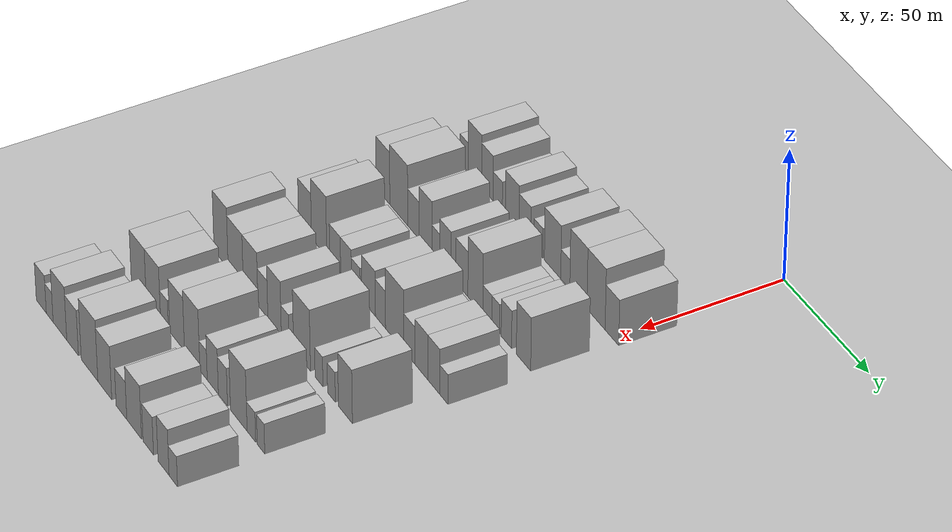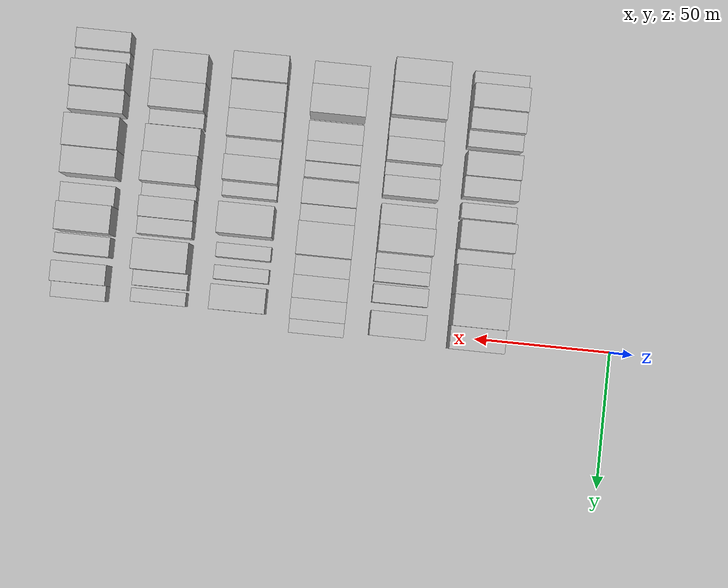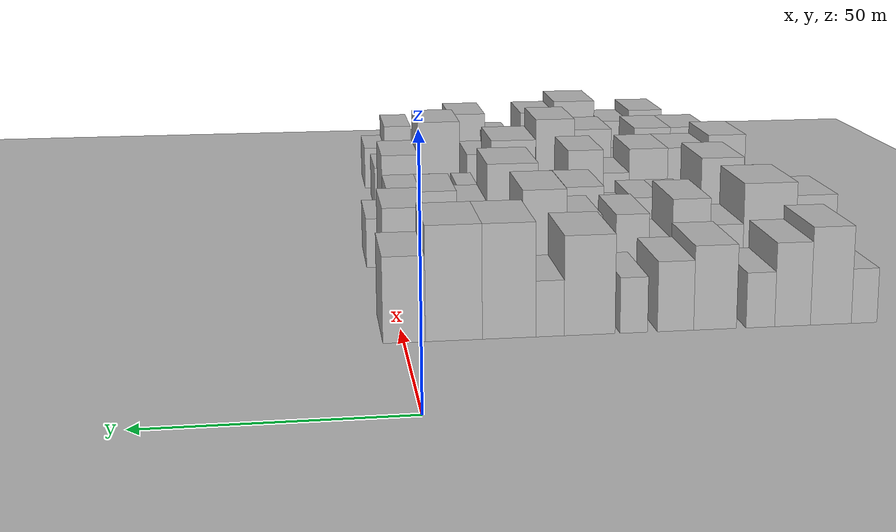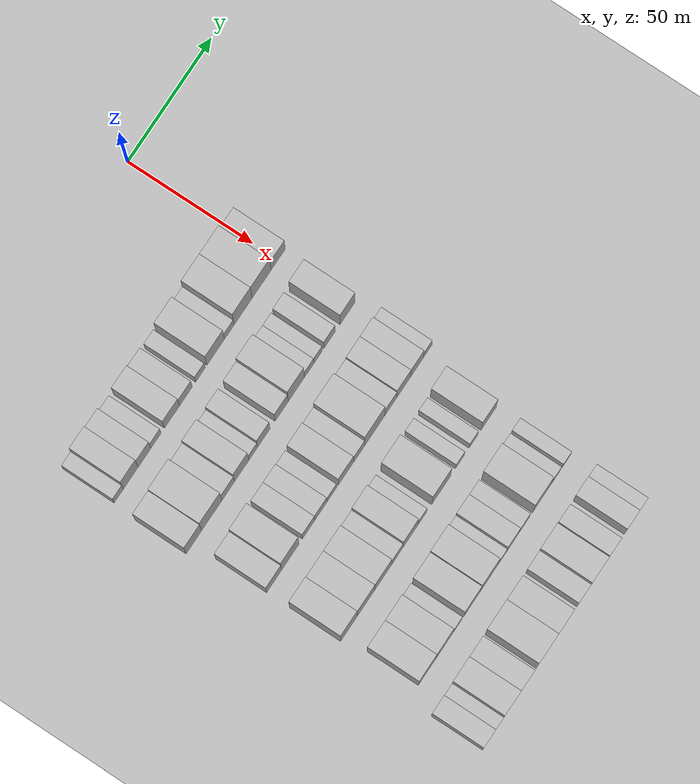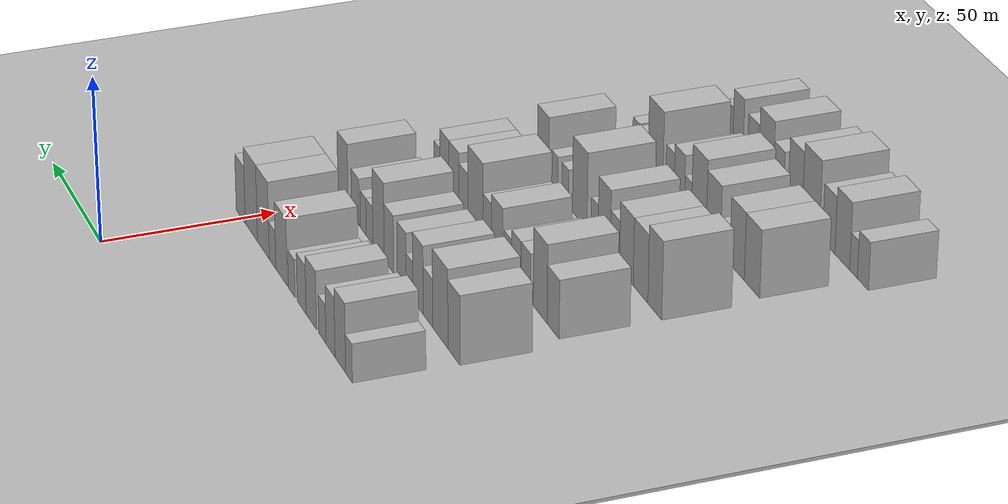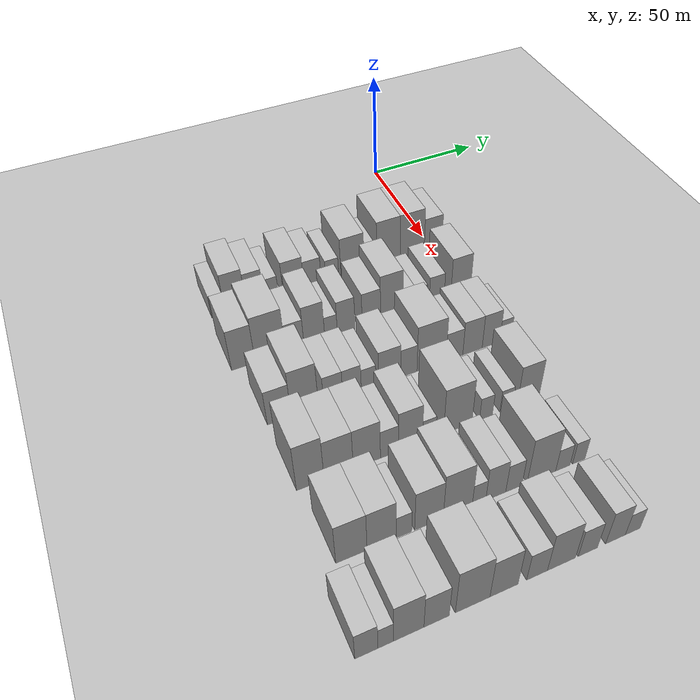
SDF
<sdf version="1.6">
 <world name="default">
  <include><name>ground_plane_1</name><uri>model://HANNAS_ground_plane</uri></include>
  <include>
   <name>ground_plane_2</name>
   <uri>model://HANNAS_ground_plane</uri>
   <pose>100 0 0  0 0 0</pose>
  </include>
  <model name="building_48">
   <static>1</static>
   <pose>50.0000 -94.0663 0 0.000000 0.000000 0.000000</pose>
   <link name="link">
    <pose>0 0 6.00 0 0 0</pose>
    <collision name="collision"><geometry><box><size>20.0000 5.4659 12.0000</size></box></geometry></collision>
    <visual name="visual">
     <cast_shadows>0</cast_shadows>
     <geometry><box><size>20.0000 5.4659 12.0000</size></box></geometry>
     <material>
      <script>
       <uri>model://HANNAS_wall/materials/scripts</uri>
       <uri>model://HANNAS_wall/materials/textures</uri>
       <name>vrc/HANNAS_wall</name>
      </script>
     </material>
    </visual>
   </link>
  </model>
  <model name="building_49">
   <static>1</static>
   <pose>50.0000 -87.0043 0 0.000000 0.000000 0.000000</pose>
   <link name="link">
    <pose>0 0 10.50 0 0 0</pose>
    <collision name="collision"><geometry><box><size>20.0000 8.6581 21.0000</size></box></geometry></collision>
    <visual name="visual">
     <cast_shadows>0</cast_shadows>
     <geometry><box><size>20.0000 8.6581 21.0000</size></box></geometry>
     <material>
      <script>
       <uri>model://HANNAS_wall/materials/scripts</uri>
       <uri>model://HANNAS_wall/materials/textures</uri>
       <name>vrc/HANNAS_wall</name>
      </script>
     </material>
    </visual>
   </link>
  </model>
  <model name="building_50">
   <static>1</static>
   <pose>50.0000 -78.9232 0 0.000000 0.000000 0.000000</pose>
   <link name="link">
    <pose>0 0 9.00 0 0 0</pose>
    <collision name="collision"><geometry><box><size>20.0000 7.5041 18.0000</size></box></geometry></collision>
    <visual name="visual">
     <cast_shadows>0</cast_shadows>
     <geometry><box><size>20.0000 7.5041 18.0000</size></box></geometry>
     <material>
      <script>
       <uri>model://HANNAS_wall/materials/scripts</uri>
       <uri>model://HANNAS_wall/materials/textures</uri>
       <name>vrc/HANNAS_wall</name>
      </script>
     </material>
    </visual>
   </link>
  </model>
  <model name="building_51">
   <static>1</static>
   <pose>50.0000 -72.1739 0 0.000000 0.000000 0.000000</pose>
   <link name="link">
    <pose>0 0 6.00 0 0 0</pose>
    <collision name="collision"><geometry><box><size>20.0000 5.9944 12.0000</size></box></geometry></collision>
    <visual name="visual">
     <cast_shadows>0</cast_shadows>
     <geometry><box><size>20.0000 5.9944 12.0000</size></box></geometry>
     <material>
      <script>
       <uri>model://HANNAS_wall/materials/scripts</uri>
       <uri>model://HANNAS_wall/materials/textures</uri>
       <name>vrc/HANNAS_wall</name>
      </script>
     </material>
    </visual>
   </link>
  </model>
  <model name="building_52">
   <static>1</static>
   <pose>50.0000 -62.7391 0 0.000000 0.000000 0.000000</pose>
   <link name="link">
    <pose>0 0 9.00 0 0 0</pose>
    <collision name="collision"><geometry><box><size>20.0000 8.8752 18.0000</size></box></geometry></collision>
    <visual name="visual">
     <cast_shadows>0</cast_shadows>
     <geometry><box><size>20.0000 8.8752 18.0000</size></box></geometry>
     <material>
      <script>
       <uri>model://HANNAS_wall/materials/scripts</uri>
       <uri>model://HANNAS_wall/materials/textures</uri>
       <name>vrc/HANNAS_wall</name>
      </script>
     </material>
    </visual>
   </link>
  </model>
  <model name="building_53">
   <static>1</static>
   <pose>50.0000 -54.5603 0 0.000000 0.000000 0.000000</pose>
   <link name="link">
    <pose>0 0 7.50 0 0 0</pose>
    <collision name="collision"><geometry><box><size>20.0000 7.4824 15.0000</size></box></geometry></collision>
    <visual name="visual">
     <cast_shadows>0</cast_shadows>
     <geometry><box><size>20.0000 7.4824 15.0000</size></box></geometry>
     <material>
      <script>
       <uri>model://HANNAS_wall/materials/scripts</uri>
       <uri>model://HANNAS_wall/materials/textures</uri>
       <name>vrc/HANNAS_wall</name>
      </script>
     </material>
    </visual>
   </link>
  </model>
  <model name="building_54">
   <static>1</static>
   <pose>50.0000 -45.9967 0 0.000000 0.000000 0.000000</pose>
   <link name="link">
    <pose>0 0 6.00 0 0 0</pose>
    <collision name="collision"><geometry><box><size>20.0000 5.6448 12.0000</size></box></geometry></collision>
    <visual name="visual">
     <cast_shadows>0</cast_shadows>
     <geometry><box><size>20.0000 5.6448 12.0000</size></box></geometry>
     <material>
      <script>
       <uri>model://HANNAS_wall/materials/scripts</uri>
       <uri>model://HANNAS_wall/materials/textures</uri>
       <name>vrc/HANNAS_wall</name>
      </script>
     </material>
    </visual>
   </link>
  </model>
  <model name="building_55">
   <static>1</static>
   <pose>50.0000 -36.9955 0 0.000000 0.000000 0.000000</pose>
   <link name="link">
    <pose>0 0 10.50 0 0 0</pose>
    <collision name="collision"><geometry><box><size>20.0000 10.3575 21.0000</size></box></geometry></collision>
    <visual name="visual">
     <cast_shadows>0</cast_shadows>
     <geometry><box><size>20.0000 10.3575 21.0000</size></box></geometry>
     <material>
      <script>
       <uri>model://HANNAS_wall/materials/scripts</uri>
       <uri>model://HANNAS_wall/materials/textures</uri>
       <name>vrc/HANNAS_wall</name>
      </script>
     </material>
    </visual>
   </link>
  </model>
  <model name="building_56">
   <static>1</static>
   <pose>50.0000 -28.9587 0 0.000000 0.000000 0.000000</pose>
   <link name="link">
    <pose>0 0 6.00 0 0 0</pose>
    <collision name="collision"><geometry><box><size>20.0000 5.7161 12.0000</size></box></geometry></collision>
    <visual name="visual">
     <cast_shadows>0</cast_shadows>
     <geometry><box><size>20.0000 5.7161 12.0000</size></box></geometry>
     <material>
      <script>
       <uri>model://HANNAS_wall/materials/scripts</uri>
       <uri>model://HANNAS_wall/materials/textures</uri>
       <name>vrc/HANNAS_wall</name>
      </script>
     </material>
    </visual>
   </link>
  </model>
  <model name="building_57">
   <static>1</static>
   <pose>50.0000 -20.7579 0 0.000000 0.000000 0.000000</pose>
   <link name="link">
    <pose>0 0 12.00 0 0 0</pose>
    <collision name="collision"><geometry><box><size>20.0000 10.6855 24.0000</size></box></geometry></collision>
    <visual name="visual">
     <cast_shadows>0</cast_shadows>
     <geometry><box><size>20.0000 10.6855 24.0000</size></box></geometry>
     <material>
      <script>
       <uri>model://HANNAS_wall/materials/scripts</uri>
       <uri>model://HANNAS_wall/materials/textures</uri>
       <name>vrc/HANNAS_wall</name>
      </script>
     </material>
    </visual>
   </link>
  </model>
  <model name="building_58">
   <static>1</static>
   <pose>50.0000 -9.7811 0 0.000000 0.000000 0.000000</pose>
   <link name="link">
    <pose>0 0 12.00 0 0 0</pose>
    <collision name="collision"><geometry><box><size>20.0000 11.2681 24.0000</size></box></geometry></collision>
    <visual name="visual">
     <cast_shadows>0</cast_shadows>
     <geometry><box><size>20.0000 11.2681 24.0000</size></box></geometry>
     <material>
      <script>
       <uri>model://HANNAS_wall/materials/scripts</uri>
       <uri>model://HANNAS_wall/materials/textures</uri>
       <name>vrc/HANNAS_wall</name>
      </script>
     </material>
    </visual>
   </link>
  </model>
  <model name="building_59">
   <static>1</static>
   <pose>50.0000 0.0521 0 0.000000 0.000000 0.000000</pose>
   <link name="link">
    <pose>0 0 9.00 0 0 0</pose>
    <collision name="collision"><geometry><box><size>20.0000 8.3983 18.0000</size></box></geometry></collision>
    <visual name="visual">
     <cast_shadows>0</cast_shadows>
     <geometry><box><size>20.0000 8.3983 18.0000</size></box></geometry>
     <material>
      <script>
       <uri>model://HANNAS_wall/materials/scripts</uri>
       <uri>model://HANNAS_wall/materials/textures</uri>
       <name>vrc/HANNAS_wall</name>
      </script>
     </material>
    </visual>
   </link>
  </model>
  <model name="building_153">
   <static>1</static>
   <pose>79.0000 -93.1137 0 0.000000 0.000000 0.000000</pose>
   <link name="link">
    <pose>0 0 10.50 0 0 0</pose>
    <collision name="collision"><geometry><box><size>20.0000 9.1468 21.0000</size></box></geometry></collision>
    <visual name="visual">
     <cast_shadows>0</cast_shadows>
     <geometry><box><size>20.0000 9.1468 21.0000</size></box></geometry>
     <material>
      <script>
       <uri>model://HANNAS_wall/materials/scripts</uri>
       <uri>model://HANNAS_wall/materials/textures</uri>
       <name>vrc/HANNAS_wall</name>
      </script>
     </material>
    </visual>
   </link>
  </model>
  <model name="building_154">
   <static>1</static>
   <pose>79.0000 -82.5761 0 0.000000 0.000000 0.000000</pose>
   <link name="link">
    <pose>0 0 12.00 0 0 0</pose>
    <collision name="collision"><geometry><box><size>20.0000 11.9283 24.0000</size></box></geometry></collision>
    <visual name="visual">
     <cast_shadows>0</cast_shadows>
     <geometry><box><size>20.0000 11.9283 24.0000</size></box></geometry>
     <material>
      <script>
       <uri>model://HANNAS_wall/materials/scripts</uri>
       <uri>model://HANNAS_wall/materials/textures</uri>
       <name>vrc/HANNAS_wall</name>
      </script>
     </material>
    </visual>
   </link>
  </model>
  <model name="building_155">
   <static>1</static>
   <pose>79.0000 -72.8852 0 0.000000 0.000000 0.000000</pose>
   <link name="link">
    <pose>0 0 7.50 0 0 0</pose>
    <collision name="collision"><geometry><box><size>20.0000 7.4536 15.0000</size></box></geometry></collision>
    <visual name="visual">
     <cast_shadows>0</cast_shadows>
     <geometry><box><size>20.0000 7.4536 15.0000</size></box></geometry>
     <material>
      <script>
       <uri>model://HANNAS_wall/materials/scripts</uri>
       <uri>model://HANNAS_wall/materials/textures</uri>
       <name>vrc/HANNAS_wall</name>
      </script>
     </material>
    </visual>
   </link>
  </model>
  <model name="building_156">
   <static>1</static>
   <pose>79.0000 -64.9380 0 0.000000 0.000000 0.000000</pose>
   <link name="link">
    <pose>0 0 10.50 0 0 0</pose>
    <collision name="collision"><geometry><box><size>20.0000 8.4408 21.0000</size></box></geometry></collision>
    <visual name="visual">
     <cast_shadows>0</cast_shadows>
     <geometry><box><size>20.0000 8.4408 21.0000</size></box></geometry>
     <material>
      <script>
       <uri>model://HANNAS_wall/materials/scripts</uri>
       <uri>model://HANNAS_wall/materials/textures</uri>
       <name>vrc/HANNAS_wall</name>
      </script>
     </material>
    </visual>
   </link>
  </model>
  <model name="building_157">
   <static>1</static>
   <pose>79.0000 -58.1325 0 0.000000 0.000000 0.000000</pose>
   <link name="link">
    <pose>0 0 6.00 0 0 0</pose>
    <collision name="collision"><geometry><box><size>20.0000 5.1701 12.0000</size></box></geometry></collision>
    <visual name="visual">
     <cast_shadows>0</cast_shadows>
     <geometry><box><size>20.0000 5.1701 12.0000</size></box></geometry>
     <material>
      <script>
       <uri>model://HANNAS_wall/materials/scripts</uri>
       <uri>model://HANNAS_wall/materials/textures</uri>
       <name>vrc/HANNAS_wall</name>
      </script>
     </material>
    </visual>
   </link>
  </model>
  <model name="building_158">
   <static>1</static>
   <pose>79.0000 -51.8760 0 0.000000 0.000000 0.000000</pose>
   <link name="link">
    <pose>0 0 9.00 0 0 0</pose>
    <collision name="collision"><geometry><box><size>20.0000 7.3428 18.0000</size></box></geometry></collision>
    <visual name="visual">
     <cast_shadows>0</cast_shadows>
     <geometry><box><size>20.0000 7.3428 18.0000</size></box></geometry>
     <material>
      <script>
       <uri>model://HANNAS_wall/materials/scripts</uri>
       <uri>model://HANNAS_wall/materials/textures</uri>
       <name>vrc/HANNAS_wall</name>
      </script>
     </material>
    </visual>
   </link>
  </model>
  <model name="building_159">
   <static>1</static>
   <pose>79.0000 -41.3092 0 0.000000 0.000000 0.000000</pose>
   <link name="link">
    <pose>0 0 9.00 0 0 0</pose>
    <collision name="collision"><geometry><box><size>20.0000 7.7908 18.0000</size></box></geometry></collision>
    <visual name="visual">
     <cast_shadows>0</cast_shadows>
     <geometry><box><size>20.0000 7.7908 18.0000</size></box></geometry>
     <material>
      <script>
       <uri>model://HANNAS_wall/materials/scripts</uri>
       <uri>model://HANNAS_wall/materials/textures</uri>
       <name>vrc/HANNAS_wall</name>
      </script>
     </material>
    </visual>
   </link>
  </model>
  <model name="building_160">
   <static>1</static>
   <pose>79.0000 -32.6104 0 0.000000 0.000000 0.000000</pose>
   <link name="link">
    <pose>0 0 12.00 0 0 0</pose>
    <collision name="collision"><geometry><box><size>20.0000 9.6068 24.0000</size></box></geometry></collision>
    <visual name="visual">
     <cast_shadows>0</cast_shadows>
     <geometry><box><size>20.0000 9.6068 24.0000</size></box></geometry>
     <material>
      <script>
       <uri>model://HANNAS_wall/materials/scripts</uri>
       <uri>model://HANNAS_wall/materials/textures</uri>
       <name>vrc/HANNAS_wall</name>
      </script>
     </material>
    </visual>
   </link>
  </model>
  <model name="building_161">
   <static>1</static>
   <pose>79.0000 -25.0001 0 0.000000 0.000000 0.000000</pose>
   <link name="link">
    <pose>0 0 6.00 0 0 0</pose>
    <collision name="collision"><geometry><box><size>20.0000 5.6137 12.0000</size></box></geometry></collision>
    <visual name="visual">
     <cast_shadows>0</cast_shadows>
     <geometry><box><size>20.0000 5.6137 12.0000</size></box></geometry>
     <material>
      <script>
       <uri>model://HANNAS_wall/materials/scripts</uri>
       <uri>model://HANNAS_wall/materials/textures</uri>
       <name>vrc/HANNAS_wall</name>
      </script>
     </material>
    </visual>
   </link>
  </model>
  <model name="building_162">
   <static>1</static>
   <pose>79.0000 -19.7302 0 0.000000 0.000000 0.000000</pose>
   <link name="link">
    <pose>0 0 6.00 0 0 0</pose>
    <collision name="collision"><geometry><box><size>20.0000 4.9263 12.0000</size></box></geometry></collision>
    <visual name="visual">
     <cast_shadows>0</cast_shadows>
     <geometry><box><size>20.0000 4.9263 12.0000</size></box></geometry>
     <material>
      <script>
       <uri>model://HANNAS_wall/materials/scripts</uri>
       <uri>model://HANNAS_wall/materials/textures</uri>
       <name>vrc/HANNAS_wall</name>
      </script>
     </material>
    </visual>
   </link>
  </model>
  <model name="building_163">
   <static>1</static>
   <pose>79.0000 -12.9501 0 0.000000 0.000000 0.000000</pose>
   <link name="link">
    <pose>0 0 7.50 0 0 0</pose>
    <collision name="collision"><geometry><box><size>20.0000 6.6340 15.0000</size></box></geometry></collision>
    <visual name="visual">
     <cast_shadows>0</cast_shadows>
     <geometry><box><size>20.0000 6.6340 15.0000</size></box></geometry>
     <material>
      <script>
       <uri>model://HANNAS_wall/materials/scripts</uri>
       <uri>model://HANNAS_wall/materials/textures</uri>
       <name>vrc/HANNAS_wall</name>
      </script>
     </material>
    </visual>
   </link>
  </model>
  <model name="building_164">
   <static>1</static>
   <pose>79.0000 -2.1685 0 0.000000 0.000000 0.000000</pose>
   <link name="link">
    <pose>0 0 10.50 0 0 0</pose>
    <collision name="collision"><geometry><box><size>20.0000 8.9290 21.0000</size></box></geometry></collision>
    <visual name="visual">
     <cast_shadows>0</cast_shadows>
     <geometry><box><size>20.0000 8.9290 21.0000</size></box></geometry>
     <material>
      <script>
       <uri>model://HANNAS_wall/materials/scripts</uri>
       <uri>model://HANNAS_wall/materials/textures</uri>
       <name>vrc/HANNAS_wall</name>
      </script>
     </material>
    </visual>
   </link>
  </model>
  <model name="building_262">
   <static>1</static>
   <pose>108.0000 -89.2756 0 0.000000 0.000000 0.000000</pose>
   <link name="link">
    <pose>0 0 9.00 0 0 0</pose>
    <collision name="collision"><geometry><box><size>20.0000 8.8089 18.0000</size></box></geometry></collision>
    <visual name="visual">
     <cast_shadows>0</cast_shadows>
     <geometry><box><size>20.0000 8.8089 18.0000</size></box></geometry>
     <material>
      <script>
       <uri>model://HANNAS_wall/materials/scripts</uri>
       <uri>model://HANNAS_wall/materials/textures</uri>
       <name>vrc/HANNAS_wall</name>
      </script>
     </material>
    </visual>
   </link>
  </model>
  <model name="building_263">
   <static>1</static>
   <pose>108.0000 -79.7342 0 0.000000 0.000000 0.000000</pose>
   <link name="link">
    <pose>0 0 12.00 0 0 0</pose>
    <collision name="collision"><geometry><box><size>20.0000 10.2738 24.0000</size></box></geometry></collision>
    <visual name="visual">
     <cast_shadows>0</cast_shadows>
     <geometry><box><size>20.0000 10.2738 24.0000</size></box></geometry>
     <material>
      <script>
       <uri>model://HANNAS_wall/materials/scripts</uri>
       <uri>model://HANNAS_wall/materials/textures</uri>
       <name>vrc/HANNAS_wall</name>
      </script>
     </material>
    </visual>
   </link>
  </model>
  <model name="building_264">
   <static>1</static>
   <pose>108.0000 -68.9448 0 0.000000 0.000000 0.000000</pose>
   <link name="link">
    <pose>0 0 7.50 0 0 0</pose>
    <collision name="collision"><geometry><box><size>20.0000 7.3050 15.0000</size></box></geometry></collision>
    <visual name="visual">
     <cast_shadows>0</cast_shadows>
     <geometry><box><size>20.0000 7.3050 15.0000</size></box></geometry>
     <material>
      <script>
       <uri>model://HANNAS_wall/materials/scripts</uri>
       <uri>model://HANNAS_wall/materials/textures</uri>
       <name>vrc/HANNAS_wall</name>
      </script>
     </material>
    </visual>
   </link>
  </model>
  <model name="building_265">
   <static>1</static>
   <pose>108.0000 -61.6898 0 0.000000 0.000000 0.000000</pose>
   <link name="link">
    <pose>0 0 7.50 0 0 0</pose>
    <collision name="collision"><geometry><box><size>20.0000 7.2050 15.0000</size></box></geometry></collision>
    <visual name="visual">
     <cast_shadows>0</cast_shadows>
     <geometry><box><size>20.0000 7.2050 15.0000</size></box></geometry>
     <material>
      <script>
       <uri>model://HANNAS_wall/materials/scripts</uri>
       <uri>model://HANNAS_wall/materials/textures</uri>
       <name>vrc/HANNAS_wall</name>
      </script>
     </material>
    </visual>
   </link>
  </model>
  <model name="building_266">
   <static>1</static>
   <pose>108.0000 -55.1982 0 0.000000 0.000000 0.000000</pose>
   <link name="link">
    <pose>0 0 6.00 0 0 0</pose>
    <collision name="collision"><geometry><box><size>20.0000 5.7783 12.0000</size></box></geometry></collision>
    <visual name="visual">
     <cast_shadows>0</cast_shadows>
     <geometry><box><size>20.0000 5.7783 12.0000</size></box></geometry>
     <material>
      <script>
       <uri>model://HANNAS_wall/materials/scripts</uri>
       <uri>model://HANNAS_wall/materials/textures</uri>
       <name>vrc/HANNAS_wall</name>
      </script>
     </material>
    </visual>
   </link>
  </model>
  <model name="building_267">
   <static>1</static>
   <pose>108.0000 -46.8294 0 0.000000 0.000000 0.000000</pose>
   <link name="link">
    <pose>0 0 9.00 0 0 0</pose>
    <collision name="collision"><geometry><box><size>20.0000 8.9592 18.0000</size></box></geometry></collision>
    <visual name="visual">
     <cast_shadows>0</cast_shadows>
     <geometry><box><size>20.0000 8.9592 18.0000</size></box></geometry>
     <material>
      <script>
       <uri>model://HANNAS_wall/materials/scripts</uri>
       <uri>model://HANNAS_wall/materials/textures</uri>
       <name>vrc/HANNAS_wall</name>
      </script>
     </material>
    </visual>
   </link>
  </model>
  <model name="building_268">
   <static>1</static>
   <pose>108.0000 -39.0577 0 0.000000 0.000000 0.000000</pose>
   <link name="link">
    <pose>0 0 7.50 0 0 0</pose>
    <collision name="collision"><geometry><box><size>20.0000 6.5842 15.0000</size></box></geometry></collision>
    <visual name="visual">
     <cast_shadows>0</cast_shadows>
     <geometry><box><size>20.0000 6.5842 15.0000</size></box></geometry>
     <material>
      <script>
       <uri>model://HANNAS_wall/materials/scripts</uri>
       <uri>model://HANNAS_wall/materials/textures</uri>
       <name>vrc/HANNAS_wall</name>
      </script>
     </material>
    </visual>
   </link>
  </model>
  <model name="building_269">
   <static>1</static>
   <pose>108.0000 -29.7878 0 0.000000 0.000000 0.000000</pose>
   <link name="link">
    <pose>0 0 12.00 0 0 0</pose>
    <collision name="collision"><geometry><box><size>20.0000 11.9556 24.0000</size></box></geometry></collision>
    <visual name="visual">
     <cast_shadows>0</cast_shadows>
     <geometry><box><size>20.0000 11.9556 24.0000</size></box></geometry>
     <material>
      <script>
       <uri>model://HANNAS_wall/materials/scripts</uri>
       <uri>model://HANNAS_wall/materials/textures</uri>
       <name>vrc/HANNAS_wall</name>
      </script>
     </material>
    </visual>
   </link>
  </model>
  <model name="building_270">
   <static>1</static>
   <pose>108.0000 -20.2424 0 0.000000 0.000000 0.000000</pose>
   <link name="link">
    <pose>0 0 7.50 0 0 0</pose>
    <collision name="collision"><geometry><box><size>20.0000 7.1352 15.0000</size></box></geometry></collision>
    <visual name="visual">
     <cast_shadows>0</cast_shadows>
     <geometry><box><size>20.0000 7.1352 15.0000</size></box></geometry>
     <material>
      <script>
       <uri>model://HANNAS_wall/materials/scripts</uri>
       <uri>model://HANNAS_wall/materials/textures</uri>
       <name>vrc/HANNAS_wall</name>
      </script>
     </material>
    </visual>
   </link>
  </model>
  <model name="building_271">
   <static>1</static>
   <pose>108.0000 -12.5316 0 0.000000 0.000000 0.000000</pose>
   <link name="link">
    <pose>0 0 9.00 0 0 0</pose>
    <collision name="collision"><geometry><box><size>20.0000 8.2865 18.0000</size></box></geometry></collision>
    <visual name="visual">
     <cast_shadows>0</cast_shadows>
     <geometry><box><size>20.0000 8.2865 18.0000</size></box></geometry>
     <material>
      <script>
       <uri>model://HANNAS_wall/materials/scripts</uri>
       <uri>model://HANNAS_wall/materials/textures</uri>
       <name>vrc/HANNAS_wall</name>
      </script>
     </material>
    </visual>
   </link>
  </model>
  <model name="building_272">
   <static>1</static>
   <pose>108.0000 -4.5766 0 0.000000 0.000000 0.000000</pose>
   <link name="link">
    <pose>0 0 9.00 0 0 0</pose>
    <collision name="collision"><geometry><box><size>20.0000 7.6235 18.0000</size></box></geometry></collision>
    <visual name="visual">
     <cast_shadows>0</cast_shadows>
     <geometry><box><size>20.0000 7.6235 18.0000</size></box></geometry>
     <material>
      <script>
       <uri>model://HANNAS_wall/materials/scripts</uri>
       <uri>model://HANNAS_wall/materials/textures</uri>
       <name>vrc/HANNAS_wall</name>
      </script>
     </material>
    </visual>
   </link>
  </model>
  <model name="building_273">
   <static>1</static>
   <pose>108.0000 1.7589 0 0.000000 0.000000 0.000000</pose>
   <link name="link">
    <pose>0 0 6.00 0 0 0</pose>
    <collision name="collision"><geometry><box><size>20.0000 5.0476 12.0000</size></box></geometry></collision>
    <visual name="visual">
     <cast_shadows>0</cast_shadows>
     <geometry><box><size>20.0000 5.0476 12.0000</size></box></geometry>
     <material>
      <script>
       <uri>model://HANNAS_wall/materials/scripts</uri>
       <uri>model://HANNAS_wall/materials/textures</uri>
       <name>vrc/HANNAS_wall</name>
      </script>
     </material>
    </visual>
   </link>
  </model>
  <model name="building_381">
   <static>1</static>
   <pose>137.0000 -88.7276 0 0.000000 0.000000 0.000000</pose>
   <link name="link">
    <pose>0 0 12.00 0 0 0</pose>
    <collision name="collision"><geometry><box><size>20.0000 9.7062 24.0000</size></box></geometry></collision>
    <visual name="visual">
     <cast_shadows>0</cast_shadows>
     <geometry><box><size>20.0000 9.7062 24.0000</size></box></geometry>
     <material>
      <script>
       <uri>model://HANNAS_wall/materials/scripts</uri>
       <uri>model://HANNAS_wall/materials/textures</uri>
       <name>vrc/HANNAS_wall</name>
      </script>
     </material>
    </visual>
   </link>
  </model>
  <model name="building_382">
   <static>1</static>
   <pose>137.0000 -78.6821 0 0.000000 0.000000 0.000000</pose>
   <link name="link">
    <pose>0 0 10.50 0 0 0</pose>
    <collision name="collision"><geometry><box><size>20.0000 10.3848 21.0000</size></box></geometry></collision>
    <visual name="visual">
     <cast_shadows>0</cast_shadows>
     <geometry><box><size>20.0000 10.3848 21.0000</size></box></geometry>
     <material>
      <script>
       <uri>model://HANNAS_wall/materials/scripts</uri>
       <uri>model://HANNAS_wall/materials/textures</uri>
       <name>vrc/HANNAS_wall</name>
      </script>
     </material>
    </visual>
   </link>
  </model>
  <model name="building_383">
   <static>1</static>
   <pose>137.0000 -68.5281 0 0.000000 0.000000 0.000000</pose>
   <link name="link">
    <pose>0 0 10.50 0 0 0</pose>
    <collision name="collision"><geometry><box><size>20.0000 9.9232 21.0000</size></box></geometry></collision>
    <visual name="visual">
     <cast_shadows>0</cast_shadows>
     <geometry><box><size>20.0000 9.9232 21.0000</size></box></geometry>
     <material>
      <script>
       <uri>model://HANNAS_wall/materials/scripts</uri>
       <uri>model://HANNAS_wall/materials/textures</uri>
       <name>vrc/HANNAS_wall</name>
      </script>
     </material>
    </visual>
   </link>
  </model>
  <model name="building_384">
   <static>1</static>
   <pose>137.0000 -60.2398 0 0.000000 0.000000 0.000000</pose>
   <link name="link">
    <pose>0 0 7.50 0 0 0</pose>
    <collision name="collision"><geometry><box><size>20.0000 6.6534 15.0000</size></box></geometry></collision>
    <visual name="visual">
     <cast_shadows>0</cast_shadows>
     <geometry><box><size>20.0000 6.6534 15.0000</size></box></geometry>
     <material>
      <script>
       <uri>model://HANNAS_wall/materials/scripts</uri>
       <uri>model://HANNAS_wall/materials/textures</uri>
       <name>vrc/HANNAS_wall</name>
      </script>
     </material>
    </visual>
   </link>
  </model>
  <model name="building_385">
   <static>1</static>
   <pose>137.0000 -52.4052 0 0.000000 0.000000 0.000000</pose>
   <link name="link">
    <pose>0 0 10.50 0 0 0</pose>
    <collision name="collision"><geometry><box><size>20.0000 9.0158 21.0000</size></box></geometry></collision>
    <visual name="visual">
     <cast_shadows>0</cast_shadows>
     <geometry><box><size>20.0000 9.0158 21.0000</size></box></geometry>
     <material>
      <script>
       <uri>model://HANNAS_wall/materials/scripts</uri>
       <uri>model://HANNAS_wall/materials/textures</uri>
       <name>vrc/HANNAS_wall</name>
      </script>
     </material>
    </visual>
   </link>
  </model>
  <model name="building_386">
   <static>1</static>
   <pose>137.0000 -45.2997 0 0.000000 0.000000 0.000000</pose>
   <link name="link">
    <pose>0 0 6.00 0 0 0</pose>
    <collision name="collision"><geometry><box><size>20.0000 5.1953 12.0000</size></box></geometry></collision>
    <visual name="visual">
     <cast_shadows>0</cast_shadows>
     <geometry><box><size>20.0000 5.1953 12.0000</size></box></geometry>
     <material>
      <script>
       <uri>model://HANNAS_wall/materials/scripts</uri>
       <uri>model://HANNAS_wall/materials/textures</uri>
       <name>vrc/HANNAS_wall</name>
      </script>
     </material>
    </visual>
   </link>
  </model>
  <model name="building_387">
   <static>1</static>
   <pose>137.0000 -34.1279 0 0.000000 0.000000 0.000000</pose>
   <link name="link">
    <pose>0 0 12.00 0 0 0</pose>
    <collision name="collision"><geometry><box><size>20.0000 11.1482 24.0000</size></box></geometry></collision>
    <visual name="visual">
     <cast_shadows>0</cast_shadows>
     <geometry><box><size>20.0000 11.1482 24.0000</size></box></geometry>
     <material>
      <script>
       <uri>model://HANNAS_wall/materials/scripts</uri>
       <uri>model://HANNAS_wall/materials/textures</uri>
       <name>vrc/HANNAS_wall</name>
      </script>
     </material>
    </visual>
   </link>
  </model>
  <model name="building_388">
   <static>1</static>
   <pose>137.0000 -22.9718 0 0.000000 0.000000 0.000000</pose>
   <link name="link">
    <pose>0 0 6.00 0 0 0</pose>
    <collision name="collision"><geometry><box><size>20.0000 5.1640 12.0000</size></box></geometry></collision>
    <visual name="visual">
     <cast_shadows>0</cast_shadows>
     <geometry><box><size>20.0000 5.1640 12.0000</size></box></geometry>
     <material>
      <script>
       <uri>model://HANNAS_wall/materials/scripts</uri>
       <uri>model://HANNAS_wall/materials/textures</uri>
       <name>vrc/HANNAS_wall</name>
      </script>
     </material>
    </visual>
   </link>
  </model>
  <model name="building_389">
   <static>1</static>
   <pose>137.0000 -14.8490 0 0.000000 0.000000 0.000000</pose>
   <link name="link">
    <pose>0 0 6.00 0 0 0</pose>
    <collision name="collision"><geometry><box><size>20.0000 5.0817 12.0000</size></box></geometry></collision>
    <visual name="visual">
     <cast_shadows>0</cast_shadows>
     <geometry><box><size>20.0000 5.0817 12.0000</size></box></geometry>
     <material>
      <script>
       <uri>model://HANNAS_wall/materials/scripts</uri>
       <uri>model://HANNAS_wall/materials/textures</uri>
       <name>vrc/HANNAS_wall</name>
      </script>
     </material>
    </visual>
   </link>
  </model>
  <model name="building_390">
   <static>1</static>
   <pose>137.0000 -5.7820 0 0.000000 0.000000 0.000000</pose>
   <link name="link">
    <pose>0 0 10.50 0 0 0</pose>
    <collision name="collision"><geometry><box><size>20.0000 9.0523 21.0000</size></box></geometry></collision>
    <visual name="visual">
     <cast_shadows>0</cast_shadows>
     <geometry><box><size>20.0000 9.0523 21.0000</size></box></geometry>
     <material>
      <script>
       <uri>model://HANNAS_wall/materials/scripts</uri>
       <uri>model://HANNAS_wall/materials/textures</uri>
       <name>vrc/HANNAS_wall</name>
      </script>
     </material>
    </visual>
   </link>
  </model>
  <model name="building_491">
   <static>1</static>
   <pose>166.0000 -86.3207 0 0.000000 0.000000 0.000000</pose>
   <link name="link">
    <pose>0 0 10.50 0 0 0</pose>
    <collision name="collision"><geometry><box><size>20.0000 10.4282 21.0000</size></box></geometry></collision>
    <visual name="visual">
     <cast_shadows>0</cast_shadows>
     <geometry><box><size>20.0000 10.4282 21.0000</size></box></geometry>
     <material>
      <script>
       <uri>model://HANNAS_wall/materials/scripts</uri>
       <uri>model://HANNAS_wall/materials/textures</uri>
       <name>vrc/HANNAS_wall</name>
      </script>
     </material>
    </visual>
   </link>
  </model>
  <model name="building_492">
   <static>1</static>
   <pose>166.0000 -76.1571 0 0.000000 0.000000 0.000000</pose>
   <link name="link">
    <pose>0 0 10.50 0 0 0</pose>
    <collision name="collision"><geometry><box><size>20.0000 9.8992 21.0000</size></box></geometry></collision>
    <visual name="visual">
     <cast_shadows>0</cast_shadows>
     <geometry><box><size>20.0000 9.8992 21.0000</size></box></geometry>
     <material>
      <script>
       <uri>model://HANNAS_wall/materials/scripts</uri>
       <uri>model://HANNAS_wall/materials/textures</uri>
       <name>vrc/HANNAS_wall</name>
      </script>
     </material>
    </visual>
   </link>
  </model>
  <model name="building_493">
   <static>1</static>
   <pose>166.0000 -68.5106 0 0.000000 0.000000 0.000000</pose>
   <link name="link">
    <pose>0 0 6.00 0 0 0</pose>
    <collision name="collision"><geometry><box><size>20.0000 5.3936 12.0000</size></box></geometry></collision>
    <visual name="visual">
     <cast_shadows>0</cast_shadows>
     <geometry><box><size>20.0000 5.3936 12.0000</size></box></geometry>
     <material>
      <script>
       <uri>model://HANNAS_wall/materials/scripts</uri>
       <uri>model://HANNAS_wall/materials/textures</uri>
       <name>vrc/HANNAS_wall</name>
      </script>
     </material>
    </visual>
   </link>
  </model>
  <model name="building_494">
   <static>1</static>
   <pose>166.0000 -59.7815 0 0.000000 0.000000 0.000000</pose>
   <link name="link">
    <pose>0 0 10.50 0 0 0</pose>
    <collision name="collision"><geometry><box><size>20.0000 10.0646 21.0000</size></box></geometry></collision>
    <visual name="visual">
     <cast_shadows>0</cast_shadows>
     <geometry><box><size>20.0000 10.0646 21.0000</size></box></geometry>
     <material>
      <script>
       <uri>model://HANNAS_wall/materials/scripts</uri>
       <uri>model://HANNAS_wall/materials/textures</uri>
       <name>vrc/HANNAS_wall</name>
      </script>
     </material>
    </visual>
   </link>
  </model>
  <model name="building_495">
   <static>1</static>
   <pose>166.0000 -49.5238 0 0.000000 0.000000 0.000000</pose>
   <link name="link">
    <pose>0 0 12.00 0 0 0</pose>
    <collision name="collision"><geometry><box><size>20.0000 10.4507 24.0000</size></box></geometry></collision>
    <visual name="visual">
     <cast_shadows>0</cast_shadows>
     <geometry><box><size>20.0000 10.4507 24.0000</size></box></geometry>
     <material>
      <script>
       <uri>model://HANNAS_wall/materials/scripts</uri>
       <uri>model://HANNAS_wall/materials/textures</uri>
       <name>vrc/HANNAS_wall</name>
      </script>
     </material>
    </visual>
   </link>
  </model>
  <model name="building_496">
   <static>1</static>
   <pose>166.0000 -41.8097 0 0.000000 0.000000 0.000000</pose>
   <link name="link">
    <pose>0 0 6.00 0 0 0</pose>
    <collision name="collision"><geometry><box><size>20.0000 4.9776 12.0000</size></box></geometry></collision>
    <visual name="visual">
     <cast_shadows>0</cast_shadows>
     <geometry><box><size>20.0000 4.9776 12.0000</size></box></geometry>
     <material>
      <script>
       <uri>model://HANNAS_wall/materials/scripts</uri>
       <uri>model://HANNAS_wall/materials/textures</uri>
       <name>vrc/HANNAS_wall</name>
      </script>
     </material>
    </visual>
   </link>
  </model>
  <model name="building_497">
   <static>1</static>
   <pose>166.0000 -35.5849 0 0.000000 0.000000 0.000000</pose>
   <link name="link">
    <pose>0 0 9.00 0 0 0</pose>
    <collision name="collision"><geometry><box><size>20.0000 7.4719 18.0000</size></box></geometry></collision>
    <visual name="visual">
     <cast_shadows>0</cast_shadows>
     <geometry><box><size>20.0000 7.4719 18.0000</size></box></geometry>
     <material>
      <script>
       <uri>model://HANNAS_wall/materials/scripts</uri>
       <uri>model://HANNAS_wall/materials/textures</uri>
       <name>vrc/HANNAS_wall</name>
      </script>
     </material>
    </visual>
   </link>
  </model>
  <model name="building_498">
   <static>1</static>
   <pose>166.0000 -28.8009 0 0.000000 0.000000 0.000000</pose>
   <link name="link">
    <pose>0 0 7.50 0 0 0</pose>
    <collision name="collision"><geometry><box><size>20.0000 6.0961 15.0000</size></box></geometry></collision>
    <visual name="visual">
     <cast_shadows>0</cast_shadows>
     <geometry><box><size>20.0000 6.0961 15.0000</size></box></geometry>
     <material>
      <script>
       <uri>model://HANNAS_wall/materials/scripts</uri>
       <uri>model://HANNAS_wall/materials/textures</uri>
       <name>vrc/HANNAS_wall</name>
      </script>
     </material>
    </visual>
   </link>
  </model>
  <model name="building_499">
   <static>1</static>
   <pose>166.0000 -18.2362 0 0.000000 0.000000 0.000000</pose>
   <link name="link">
    <pose>0 0 12.00 0 0 0</pose>
    <collision name="collision"><geometry><box><size>20.0000 11.0333 24.0000</size></box></geometry></collision>
    <visual name="visual">
     <cast_shadows>0</cast_shadows>
     <geometry><box><size>20.0000 11.0333 24.0000</size></box></geometry>
     <material>
      <script>
       <uri>model://HANNAS_wall/materials/scripts</uri>
       <uri>model://HANNAS_wall/materials/textures</uri>
       <name>vrc/HANNAS_wall</name>
      </script>
     </material>
    </visual>
   </link>
  </model>
  <model name="building_500">
   <static>1</static>
   <pose>166.0000 -9.9010 0 0.000000 0.000000 0.000000</pose>
   <link name="link">
    <pose>0 0 6.00 0 0 0</pose>
    <collision name="collision"><geometry><box><size>20.0000 5.6372 12.0000</size></box></geometry></collision>
    <visual name="visual">
     <cast_shadows>0</cast_shadows>
     <geometry><box><size>20.0000 5.6372 12.0000</size></box></geometry>
     <material>
      <script>
       <uri>model://HANNAS_wall/materials/scripts</uri>
       <uri>model://HANNAS_wall/materials/textures</uri>
       <name>vrc/HANNAS_wall</name>
      </script>
     </material>
    </visual>
   </link>
  </model>
  <model name="building_501">
   <static>1</static>
   <pose>166.0000 -3.6021 0 0.000000 0.000000 0.000000</pose>
   <link name="link">
    <pose>0 0 6.00 0 0 0</pose>
    <collision name="collision"><geometry><box><size>20.0000 4.9607 12.0000</size></box></geometry></collision>
    <visual name="visual">
     <cast_shadows>0</cast_shadows>
     <geometry><box><size>20.0000 4.9607 12.0000</size></box></geometry>
     <material>
      <script>
       <uri>model://HANNAS_wall/materials/scripts</uri>
       <uri>model://HANNAS_wall/materials/textures</uri>
       <name>vrc/HANNAS_wall</name>
      </script>
     </material>
    </visual>
   </link>
  </model>
  <model name="building_612">
   <static>1</static>
   <pose>195.0000 -93.9646 0 0.000000 0.000000 0.000000</pose>
   <link name="link">
    <pose>0 0 7.50 0 0 0</pose>
    <collision name="collision"><geometry><box><size>20.0000 7.1101 15.0000</size></box></geometry></collision>
    <visual name="visual">
     <cast_shadows>0</cast_shadows>
     <geometry><box><size>20.0000 7.1101 15.0000</size></box></geometry>
     <material>
      <script>
       <uri>model://HANNAS_wall/materials/scripts</uri>
       <uri>model://HANNAS_wall/materials/textures</uri>
       <name>vrc/HANNAS_wall</name>
      </script>
     </material>
    </visual>
   </link>
  </model>
  <model name="building_613">
   <static>1</static>
   <pose>195.0000 -87.9735 0 0.000000 0.000000 0.000000</pose>
   <link name="link">
    <pose>0 0 6.00 0 0 0</pose>
    <collision name="collision"><geometry><box><size>20.0000 4.8722 12.0000</size></box></geometry></collision>
    <visual name="visual">
     <cast_shadows>0</cast_shadows>
     <geometry><box><size>20.0000 4.8722 12.0000</size></box></geometry>
     <material>
      <script>
       <uri>model://HANNAS_wall/materials/scripts</uri>
       <uri>model://HANNAS_wall/materials/textures</uri>
       <name>vrc/HANNAS_wall</name>
      </script>
     </material>
    </visual>
   </link>
  </model>
  <model name="building_614">
   <static>1</static>
   <pose>195.0000 -80.7124 0 0.000000 0.000000 0.000000</pose>
   <link name="link">
    <pose>0 0 10.50 0 0 0</pose>
    <collision name="collision"><geometry><box><size>20.0000 9.6500 21.0000</size></box></geometry></collision>
    <visual name="visual">
     <cast_shadows>0</cast_shadows>
     <geometry><box><size>20.0000 9.6500 21.0000</size></box></geometry>
     <material>
      <script>
       <uri>model://HANNAS_wall/materials/scripts</uri>
       <uri>model://HANNAS_wall/materials/textures</uri>
       <name>vrc/HANNAS_wall</name>
      </script>
     </material>
    </visual>
   </link>
  </model>
  <model name="building_615">
   <static>1</static>
   <pose>195.0000 -71.7765 0 0.000000 0.000000 0.000000</pose>
   <link name="link">
    <pose>0 0 9.00 0 0 0</pose>
    <collision name="collision"><geometry><box><size>20.0000 8.2218 18.0000</size></box></geometry></collision>
    <visual name="visual">
     <cast_shadows>0</cast_shadows>
     <geometry><box><size>20.0000 8.2218 18.0000</size></box></geometry>
     <material>
      <script>
       <uri>model://HANNAS_wall/materials/scripts</uri>
       <uri>model://HANNAS_wall/materials/textures</uri>
       <name>vrc/HANNAS_wall</name>
      </script>
     </material>
    </visual>
   </link>
  </model>
  <model name="building_616">
   <static>1</static>
   <pose>195.0000 -59.8876 0 0.000000 0.000000 0.000000</pose>
   <link name="link">
    <pose>0 0 12.00 0 0 0</pose>
    <collision name="collision"><geometry><box><size>20.0000 11.5558 24.0000</size></box></geometry></collision>
    <visual name="visual">
     <cast_shadows>0</cast_shadows>
     <geometry><box><size>20.0000 11.5558 24.0000</size></box></geometry>
     <material>
      <script>
       <uri>model://HANNAS_wall/materials/scripts</uri>
       <uri>model://HANNAS_wall/materials/textures</uri>
       <name>vrc/HANNAS_wall</name>
      </script>
     </material>
    </visual>
   </link>
  </model>
  <model name="building_617">
   <static>1</static>
   <pose>195.0000 -49.2964 0 0.000000 0.000000 0.000000</pose>
   <link name="link">
    <pose>0 0 10.50 0 0 0</pose>
    <collision name="collision"><geometry><box><size>20.0000 9.6267 21.0000</size></box></geometry></collision>
    <visual name="visual">
     <cast_shadows>0</cast_shadows>
     <geometry><box><size>20.0000 9.6267 21.0000</size></box></geometry>
     <material>
      <script>
       <uri>model://HANNAS_wall/materials/scripts</uri>
       <uri>model://HANNAS_wall/materials/textures</uri>
       <name>vrc/HANNAS_wall</name>
      </script>
     </material>
    </visual>
   </link>
  </model>
  <model name="building_618">
   <static>1</static>
   <pose>195.0000 -37.8319 0 0.000000 0.000000 0.000000</pose>
   <link name="link">
    <pose>0 0 7.50 0 0 0</pose>
    <collision name="collision"><geometry><box><size>20.0000 7.3022 15.0000</size></box></geometry></collision>
    <visual name="visual">
     <cast_shadows>0</cast_shadows>
     <geometry><box><size>20.0000 7.3022 15.0000</size></box></geometry>
     <material>
      <script>
       <uri>model://HANNAS_wall/materials/scripts</uri>
       <uri>model://HANNAS_wall/materials/textures</uri>
       <name>vrc/HANNAS_wall</name>
      </script>
     </material>
    </visual>
   </link>
  </model>
  <model name="building_619">
   <static>1</static>
   <pose>195.0000 -29.1472 0 0.000000 0.000000 0.000000</pose>
   <link name="link">
    <pose>0 0 10.50 0 0 0</pose>
    <collision name="collision"><geometry><box><size>20.0000 10.0673 21.0000</size></box></geometry></collision>
    <visual name="visual">
     <cast_shadows>0</cast_shadows>
     <geometry><box><size>20.0000 10.0673 21.0000</size></box></geometry>
     <material>
      <script>
       <uri>model://HANNAS_wall/materials/scripts</uri>
       <uri>model://HANNAS_wall/materials/textures</uri>
       <name>vrc/HANNAS_wall</name>
      </script>
     </material>
    </visual>
   </link>
  </model>
  <model name="building_620">
   <static>1</static>
   <pose>195.0000 -19.5756 0 0.000000 0.000000 0.000000</pose>
   <link name="link">
    <pose>0 0 7.50 0 0 0</pose>
    <collision name="collision"><geometry><box><size>20.0000 7.0757 15.0000</size></box></geometry></collision>
    <visual name="visual">
     <cast_shadows>0</cast_shadows>
     <geometry><box><size>20.0000 7.0757 15.0000</size></box></geometry>
     <material>
      <script>
       <uri>model://HANNAS_wall/materials/scripts</uri>
       <uri>model://HANNAS_wall/materials/textures</uri>
       <name>vrc/HANNAS_wall</name>
      </script>
     </material>
    </visual>
   </link>
  </model>
  <model name="building_621">
   <static>1</static>
   <pose>195.0000 -9.3315 0 0.000000 0.000000 0.000000</pose>
   <link name="link">
    <pose>0 0 9.00 0 0 0</pose>
    <collision name="collision"><geometry><box><size>20.0000 7.4126 18.0000</size></box></geometry></collision>
    <visual name="visual">
     <cast_shadows>0</cast_shadows>
     <geometry><box><size>20.0000 7.4126 18.0000</size></box></geometry>
     <material>
      <script>
       <uri>model://HANNAS_wall/materials/scripts</uri>
       <uri>model://HANNAS_wall/materials/textures</uri>
       <name>vrc/HANNAS_wall</name>
      </script>
     </material>
    </visual>
   </link>
  </model>
  <model name="building_622">
   <static>1</static>
   <pose>195.0000 -2.8104 0 0.000000 0.000000 0.000000</pose>
   <link name="link">
    <pose>0 0 6.00 0 0 0</pose>
    <collision name="collision"><geometry><box><size>20.0000 5.6297 12.0000</size></box></geometry></collision>
    <visual name="visual">
     <cast_shadows>0</cast_shadows>
     <geometry><box><size>20.0000 5.6297 12.0000</size></box></geometry>
     <material>
      <script>
       <uri>model://HANNAS_wall/materials/scripts</uri>
       <uri>model://HANNAS_wall/materials/textures</uri>
       <name>vrc/HANNAS_wall</name>
      </script>
     </material>
    </visual>
   </link>
  </model>
 </world>
</sdf>
